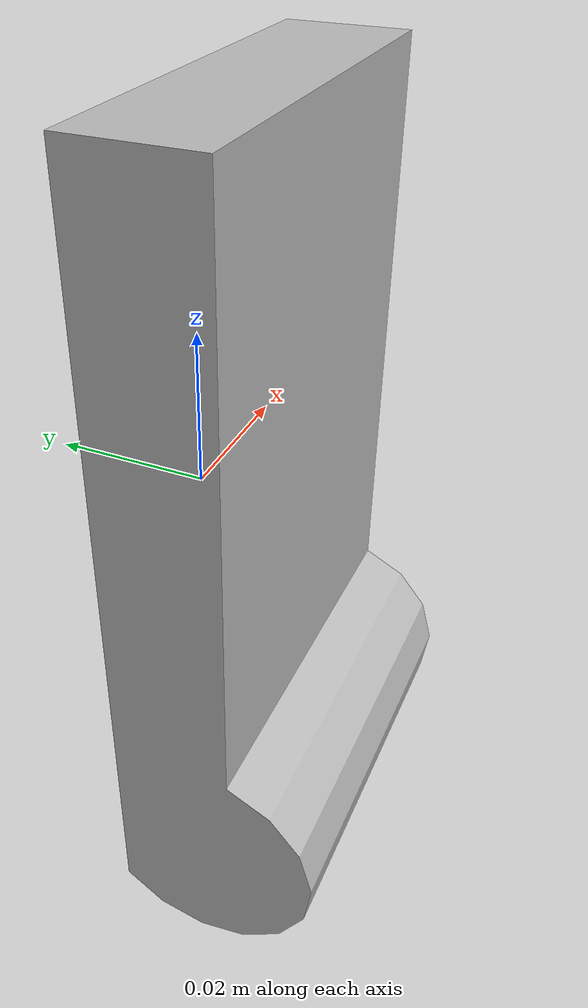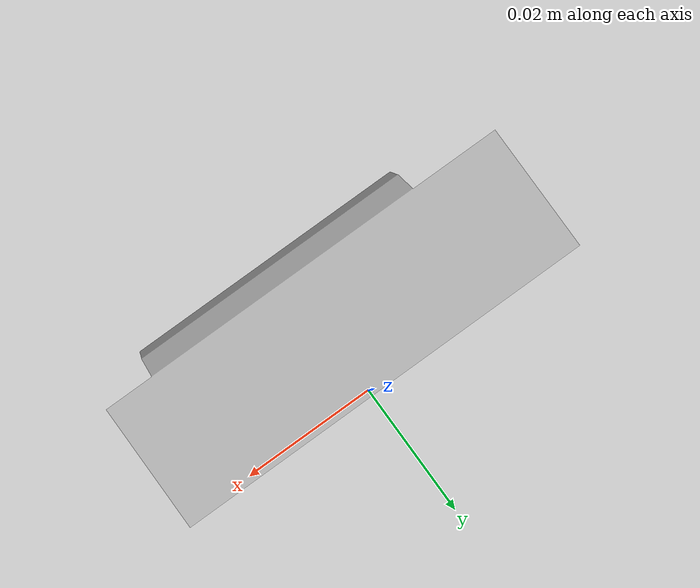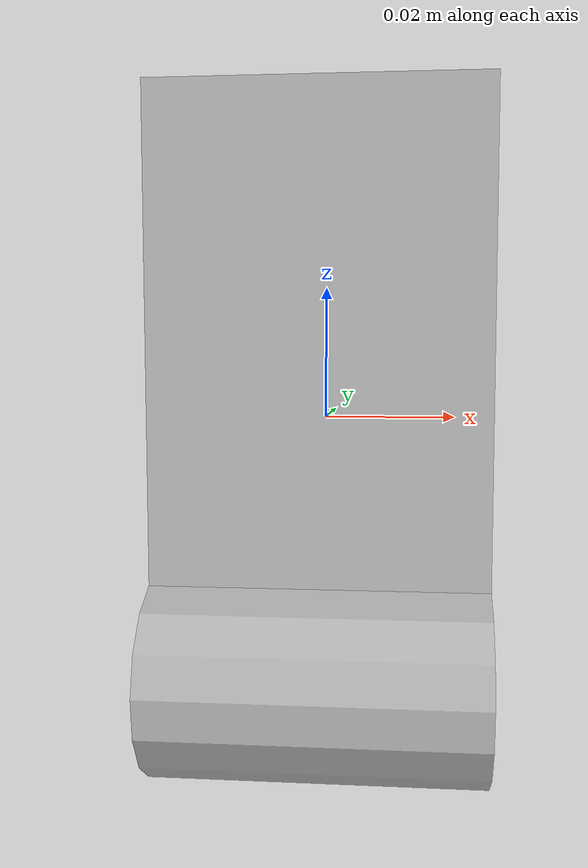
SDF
<?xml version='1.0'?>
<sdf version='1.6'>
    <model name='DecaWave'>
        <link name="base_link">

            <inertial>
                <pose>0 0 0 0 0 0</pose>

                <mass>0.1</mass>
                <inertia>
                    <ixx>0.01</ixx>
                    <ixy>0.0</ixy>
                    <ixz>0.0</ixz>
                    <iyy>0.01</iyy>
                    <iyz>0.0</iyz>
                    <izz>0.01</izz>
                </inertia>
            </inertial>

            <collision name="collision">
                <pose>0 0 0 0 0 0</pose>
                <geometry>
                    <mesh>
                        <uri>file://meshes/Decawave.stl</uri>
                        <scale>1 1 1</scale>
                    </mesh>
                </geometry>
            </collision>

            <visual name="visual">
                <pose>0 0 0 0 0 0</pose>
                <geometry>
                    <mesh>
                        <uri>file://meshes/Decawave.stl</uri>
                        <scale>1 1 1</scale>
                    </mesh>
                </geometry>
            </visual>
        </link>
    </model>
</sdf>
